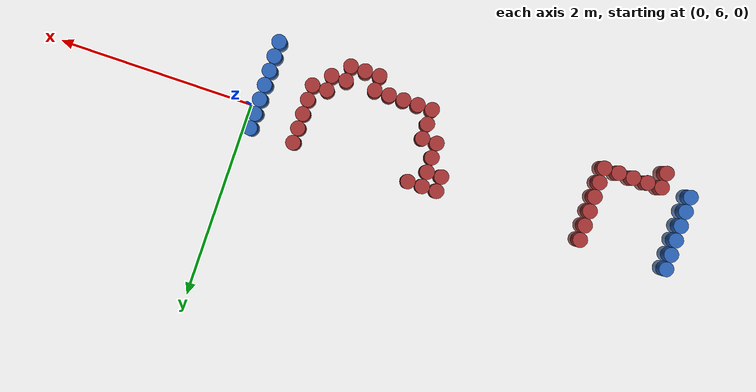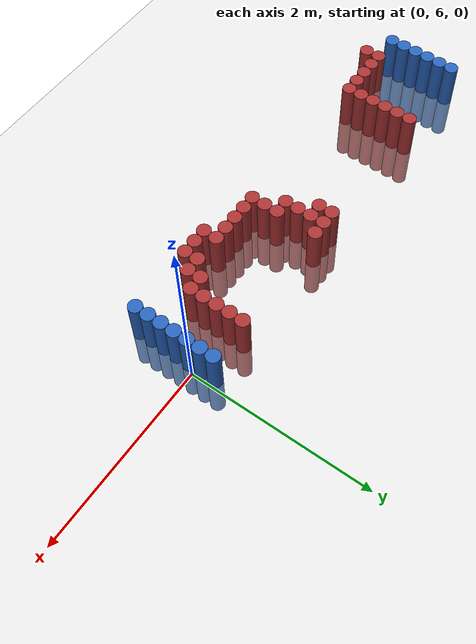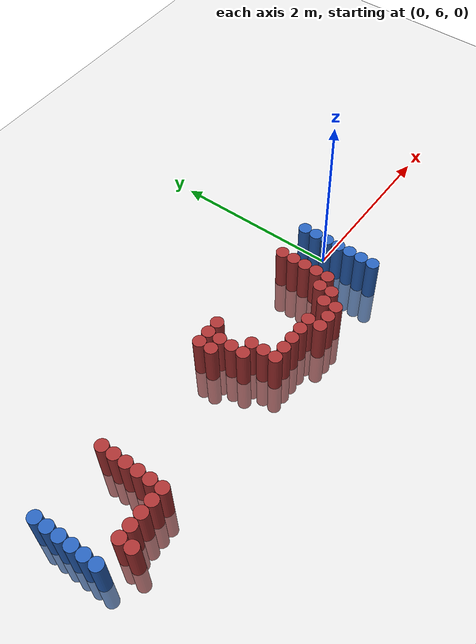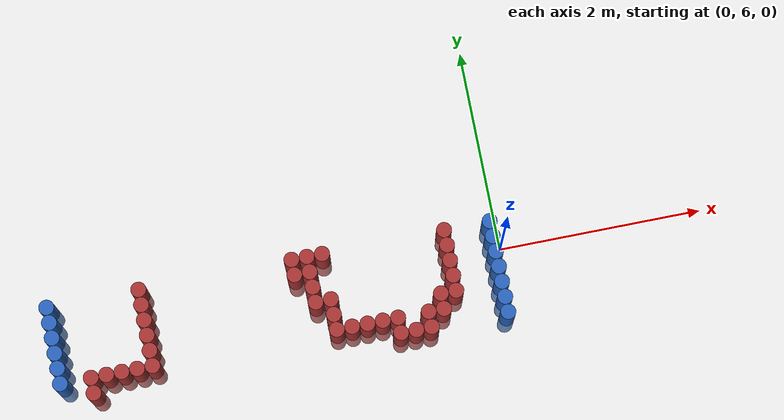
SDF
<sdf version="1.6">
 <world name="default">
  <model name="ground_plane">
   <static>1</static>
   <link name="link">
    <collision name="collision">
     <geometry><plane><normal>0 0 1</normal><size>100 100</size></plane></geometry>
     <surface><friction><ode><mu>100</mu><mu2>50</mu2></ode></friction></surface>
    </collision>
    <visual name="visual">
     <cast_shadows>0</cast_shadows>
     <geometry><plane><normal>0 0 1</normal><size>100 100</size></plane></geometry>
     <material>
      <script><uri>file://media/materials/scripts/gazebo.material</uri><name>Gazebo/Grey</name></script>
     </material>
    </visual>
   </link>
  </model>
  <model name="unit_cylinder_98">
   <static>1</static>
   <pose>-4.425000 5.475000 0.000000 0.000000 0.000000 0.000000</pose>
   <link name="link">
    <inertial>
     <mass>1</mass>
     <inertia><ixx>0.145833</ixx><ixy>0</ixy><ixz>0</ixz><iyy>0.145833</iyy><iyz>0</iyz><izz>0.125</izz></inertia>
    </inertial>
    <collision name="collision">
     <geometry><cylinder><radius>0.075000</radius><length>1</length></cylinder></geometry>
    </collision>
    <visual name="visual">
     <geometry><cylinder><radius>0.075000</radius><length>1</length></cylinder></geometry>
     <material>
      <ambient>0.152000 0.379000 0.720000 1</ambient>
      <diffuse>0.152000 0.379000 0.720000 1</diffuse>
     </material>
     <material>
      <script><name>Gazebo/Grey</name><uri>file://media/materials/scripts/gazebo.material</uri></script>
     </material>
    </visual>
   </link>
  </model>
  <model name="unit_cylinder_99">
   <static>1</static>
   <pose>-4.425000 5.625000 0.000000 0.000000 0.000000 0.000000</pose>
   <link name="link">
    <inertial>
     <mass>1</mass>
     <inertia><ixx>0.145833</ixx><ixy>0</ixy><ixz>0</ixz><iyy>0.145833</iyy><iyz>0</iyz><izz>0.125</izz></inertia>
    </inertial>
    <collision name="collision">
     <geometry><cylinder><radius>0.075000</radius><length>1</length></cylinder></geometry>
    </collision>
    <visual name="visual">
     <geometry><cylinder><radius>0.075000</radius><length>1</length></cylinder></geometry>
     <material>
      <ambient>0.152000 0.379000 0.720000 1</ambient>
      <diffuse>0.152000 0.379000 0.720000 1</diffuse>
     </material>
     <material>
      <script><name>Gazebo/Grey</name><uri>file://media/materials/scripts/gazebo.material</uri></script>
     </material>
    </visual>
   </link>
  </model>
  <model name="unit_cylinder_100">
   <static>1</static>
   <pose>-4.425000 5.775000 0.000000 0.000000 0.000000 0.000000</pose>
   <link name="link">
    <inertial>
     <mass>1</mass>
     <inertia><ixx>0.145833</ixx><ixy>0</ixy><ixz>0</ixz><iyy>0.145833</iyy><iyz>0</iyz><izz>0.125</izz></inertia>
    </inertial>
    <collision name="collision">
     <geometry><cylinder><radius>0.075000</radius><length>1</length></cylinder></geometry>
    </collision>
    <visual name="visual">
     <geometry><cylinder><radius>0.075000</radius><length>1</length></cylinder></geometry>
     <material>
      <ambient>0.152000 0.379000 0.720000 1</ambient>
      <diffuse>0.152000 0.379000 0.720000 1</diffuse>
     </material>
     <material>
      <script><name>Gazebo/Grey</name><uri>file://media/materials/scripts/gazebo.material</uri></script>
     </material>
    </visual>
   </link>
  </model>
  <model name="unit_cylinder_101">
   <static>1</static>
   <pose>-4.425000 5.925000 0.000000 0.000000 0.000000 0.000000</pose>
   <link name="link">
    <inertial>
     <mass>1</mass>
     <inertia><ixx>0.145833</ixx><ixy>0</ixy><ixz>0</ixz><iyy>0.145833</iyy><iyz>0</iyz><izz>0.125</izz></inertia>
    </inertial>
    <collision name="collision">
     <geometry><cylinder><radius>0.075000</radius><length>1</length></cylinder></geometry>
    </collision>
    <visual name="visual">
     <geometry><cylinder><radius>0.075000</radius><length>1</length></cylinder></geometry>
     <material>
      <ambient>0.152000 0.379000 0.720000 1</ambient>
      <diffuse>0.152000 0.379000 0.720000 1</diffuse>
     </material>
     <material>
      <script><name>Gazebo/Grey</name><uri>file://media/materials/scripts/gazebo.material</uri></script>
     </material>
    </visual>
   </link>
  </model>
  <model name="unit_cylinder_102">
   <static>1</static>
   <pose>-4.425000 6.075000 0.000000 0.000000 0.000000 0.000000</pose>
   <link name="link">
    <inertial>
     <mass>1</mass>
     <inertia><ixx>0.145833</ixx><ixy>0</ixy><ixz>0</ixz><iyy>0.145833</iyy><iyz>0</iyz><izz>0.125</izz></inertia>
    </inertial>
    <collision name="collision">
     <geometry><cylinder><radius>0.075000</radius><length>1</length></cylinder></geometry>
    </collision>
    <visual name="visual">
     <geometry><cylinder><radius>0.075000</radius><length>1</length></cylinder></geometry>
     <material>
      <ambient>0.152000 0.379000 0.720000 1</ambient>
      <diffuse>0.152000 0.379000 0.720000 1</diffuse>
     </material>
     <material>
      <script><name>Gazebo/Grey</name><uri>file://media/materials/scripts/gazebo.material</uri></script>
     </material>
    </visual>
   </link>
  </model>
  <model name="unit_cylinder_103">
   <static>1</static>
   <pose>-4.425000 6.225000 0.000000 0.000000 0.000000 0.000000</pose>
   <link name="link">
    <inertial>
     <mass>1</mass>
     <inertia><ixx>0.145833</ixx><ixy>0</ixy><ixz>0</ixz><iyy>0.145833</iyy><iyz>0</iyz><izz>0.125</izz></inertia>
    </inertial>
    <collision name="collision">
     <geometry><cylinder><radius>0.075000</radius><length>1</length></cylinder></geometry>
    </collision>
    <visual name="visual">
     <geometry><cylinder><radius>0.075000</radius><length>1</length></cylinder></geometry>
     <material>
      <ambient>0.152000 0.379000 0.720000 1</ambient>
      <diffuse>0.152000 0.379000 0.720000 1</diffuse>
     </material>
     <material>
      <script><name>Gazebo/Grey</name><uri>file://media/materials/scripts/gazebo.material</uri></script>
     </material>
    </visual>
   </link>
  </model>
  <model name="unit_cylinder_131">
   <static>1</static>
   <pose>-4.125000 5.325000 0.000000 0.000000 0.000000 0.000000</pose>
   <link name="link">
    <inertial>
     <mass>1</mass>
     <inertia><ixx>0.145833</ixx><ixy>0</ixy><ixz>0</ixz><iyy>0.145833</iyy><iyz>0</iyz><izz>0.125</izz></inertia>
    </inertial>
    <collision name="collision">
     <geometry><cylinder><radius>0.075000</radius><length>1</length></cylinder></geometry>
    </collision>
    <visual name="visual">
     <geometry><cylinder><radius>0.075000</radius><length>1</length></cylinder></geometry>
     <material>
      <ambient>0.648000 0.192000 0.192000 1</ambient>
      <diffuse>0.648000 0.192000 0.192000 1</diffuse>
     </material>
     <material>
      <script><name>Gazebo/Grey</name><uri>file://media/materials/scripts/gazebo.material</uri></script>
     </material>
    </visual>
   </link>
  </model>
  <model name="unit_cylinder_132">
   <static>1</static>
   <pose>-4.125000 5.475000 0.000000 0.000000 0.000000 0.000000</pose>
   <link name="link">
    <inertial>
     <mass>1</mass>
     <inertia><ixx>0.145833</ixx><ixy>0</ixy><ixz>0</ixz><iyy>0.145833</iyy><iyz>0</iyz><izz>0.125</izz></inertia>
    </inertial>
    <collision name="collision">
     <geometry><cylinder><radius>0.075000</radius><length>1</length></cylinder></geometry>
    </collision>
    <visual name="visual">
     <geometry><cylinder><radius>0.075000</radius><length>1</length></cylinder></geometry>
     <material>
      <ambient>0.648000 0.192000 0.192000 1</ambient>
      <diffuse>0.648000 0.192000 0.192000 1</diffuse>
     </material>
     <material>
      <script><name>Gazebo/Grey</name><uri>file://media/materials/scripts/gazebo.material</uri></script>
     </material>
    </visual>
   </link>
  </model>
  <model name="unit_cylinder_138">
   <static>1</static>
   <pose>-3.975000 5.475000 0.000000 0.000000 0.000000 0.000000</pose>
   <link name="link">
    <inertial>
     <mass>1</mass>
     <inertia><ixx>0.145833</ixx><ixy>0</ixy><ixz>0</ixz><iyy>0.145833</iyy><iyz>0</iyz><izz>0.125</izz></inertia>
    </inertial>
    <collision name="collision">
     <geometry><cylinder><radius>0.075000</radius><length>1</length></cylinder></geometry>
    </collision>
    <visual name="visual">
     <geometry><cylinder><radius>0.075000</radius><length>1</length></cylinder></geometry>
     <material>
      <ambient>0.648000 0.192000 0.192000 1</ambient>
      <diffuse>0.648000 0.192000 0.192000 1</diffuse>
     </material>
     <material>
      <script><name>Gazebo/Grey</name><uri>file://media/materials/scripts/gazebo.material</uri></script>
     </material>
    </visual>
   </link>
  </model>
  <model name="unit_cylinder_143">
   <static>1</static>
   <pose>-3.825000 5.475000 0.000000 0.000000 0.000000 0.000000</pose>
   <link name="link">
    <inertial>
     <mass>1</mass>
     <inertia><ixx>0.145833</ixx><ixy>0</ixy><ixz>0</ixz><iyy>0.145833</iyy><iyz>0</iyz><izz>0.125</izz></inertia>
    </inertial>
    <collision name="collision">
     <geometry><cylinder><radius>0.075000</radius><length>1</length></cylinder></geometry>
    </collision>
    <visual name="visual">
     <geometry><cylinder><radius>0.075000</radius><length>1</length></cylinder></geometry>
     <material>
      <ambient>0.648000 0.192000 0.192000 1</ambient>
      <diffuse>0.648000 0.192000 0.192000 1</diffuse>
     </material>
     <material>
      <script><name>Gazebo/Grey</name><uri>file://media/materials/scripts/gazebo.material</uri></script>
     </material>
    </visual>
   </link>
  </model>
  <model name="unit_cylinder_149">
   <static>1</static>
   <pose>-3.675000 5.475000 0.000000 0.000000 0.000000 0.000000</pose>
   <link name="link">
    <inertial>
     <mass>1</mass>
     <inertia><ixx>0.145833</ixx><ixy>0</ixy><ixz>0</ixz><iyy>0.145833</iyy><iyz>0</iyz><izz>0.125</izz></inertia>
    </inertial>
    <collision name="collision">
     <geometry><cylinder><radius>0.075000</radius><length>1</length></cylinder></geometry>
    </collision>
    <visual name="visual">
     <geometry><cylinder><radius>0.075000</radius><length>1</length></cylinder></geometry>
     <material>
      <ambient>0.648000 0.192000 0.192000 1</ambient>
      <diffuse>0.648000 0.192000 0.192000 1</diffuse>
     </material>
     <material>
      <script><name>Gazebo/Grey</name><uri>file://media/materials/scripts/gazebo.material</uri></script>
     </material>
    </visual>
   </link>
  </model>
  <model name="unit_cylinder_154">
   <static>1</static>
   <pose>-3.525000 5.475000 0.000000 0.000000 0.000000 0.000000</pose>
   <link name="link">
    <inertial>
     <mass>1</mass>
     <inertia><ixx>0.145833</ixx><ixy>0</ixy><ixz>0</ixz><iyy>0.145833</iyy><iyz>0</iyz><izz>0.125</izz></inertia>
    </inertial>
    <collision name="collision">
     <geometry><cylinder><radius>0.075000</radius><length>1</length></cylinder></geometry>
    </collision>
    <visual name="visual">
     <geometry><cylinder><radius>0.075000</radius><length>1</length></cylinder></geometry>
     <material>
      <ambient>0.648000 0.192000 0.192000 1</ambient>
      <diffuse>0.648000 0.192000 0.192000 1</diffuse>
     </material>
     <material>
      <script><name>Gazebo/Grey</name><uri>file://media/materials/scripts/gazebo.material</uri></script>
     </material>
    </visual>
   </link>
  </model>
  <model name="unit_cylinder_155">
   <static>1</static>
   <pose>-3.525000 5.625000 0.000000 0.000000 0.000000 0.000000</pose>
   <link name="link">
    <inertial>
     <mass>1</mass>
     <inertia><ixx>0.145833</ixx><ixy>0</ixy><ixz>0</ixz><iyy>0.145833</iyy><iyz>0</iyz><izz>0.125</izz></inertia>
    </inertial>
    <collision name="collision">
     <geometry><cylinder><radius>0.075000</radius><length>1</length></cylinder></geometry>
    </collision>
    <visual name="visual">
     <geometry><cylinder><radius>0.075000</radius><length>1</length></cylinder></geometry>
     <material>
      <ambient>0.648000 0.192000 0.192000 1</ambient>
      <diffuse>0.648000 0.192000 0.192000 1</diffuse>
     </material>
     <material>
      <script><name>Gazebo/Grey</name><uri>file://media/materials/scripts/gazebo.material</uri></script>
     </material>
    </visual>
   </link>
  </model>
  <model name="unit_cylinder_156">
   <static>1</static>
   <pose>-3.525000 5.775000 0.000000 0.000000 0.000000 0.000000</pose>
   <link name="link">
    <inertial>
     <mass>1</mass>
     <inertia><ixx>0.145833</ixx><ixy>0</ixy><ixz>0</ixz><iyy>0.145833</iyy><iyz>0</iyz><izz>0.125</izz></inertia>
    </inertial>
    <collision name="collision">
     <geometry><cylinder><radius>0.075000</radius><length>1</length></cylinder></geometry>
    </collision>
    <visual name="visual">
     <geometry><cylinder><radius>0.075000</radius><length>1</length></cylinder></geometry>
     <material>
      <ambient>0.648000 0.192000 0.192000 1</ambient>
      <diffuse>0.648000 0.192000 0.192000 1</diffuse>
     </material>
     <material>
      <script><name>Gazebo/Grey</name><uri>file://media/materials/scripts/gazebo.material</uri></script>
     </material>
    </visual>
   </link>
  </model>
  <model name="unit_cylinder_157">
   <static>1</static>
   <pose>-3.525000 5.925000 0.000000 0.000000 0.000000 0.000000</pose>
   <link name="link">
    <inertial>
     <mass>1</mass>
     <inertia><ixx>0.145833</ixx><ixy>0</ixy><ixz>0</ixz><iyy>0.145833</iyy><iyz>0</iyz><izz>0.125</izz></inertia>
    </inertial>
    <collision name="collision">
     <geometry><cylinder><radius>0.075000</radius><length>1</length></cylinder></geometry>
    </collision>
    <visual name="visual">
     <geometry><cylinder><radius>0.075000</radius><length>1</length></cylinder></geometry>
     <material>
      <ambient>0.648000 0.192000 0.192000 1</ambient>
      <diffuse>0.648000 0.192000 0.192000 1</diffuse>
     </material>
     <material>
      <script><name>Gazebo/Grey</name><uri>file://media/materials/scripts/gazebo.material</uri></script>
     </material>
    </visual>
   </link>
  </model>
  <model name="unit_cylinder_158">
   <static>1</static>
   <pose>-3.525000 6.075000 0.000000 0.000000 0.000000 0.000000</pose>
   <link name="link">
    <inertial>
     <mass>1</mass>
     <inertia><ixx>0.145833</ixx><ixy>0</ixy><ixz>0</ixz><iyy>0.145833</iyy><iyz>0</iyz><izz>0.125</izz></inertia>
    </inertial>
    <collision name="collision">
     <geometry><cylinder><radius>0.075000</radius><length>1</length></cylinder></geometry>
    </collision>
    <visual name="visual">
     <geometry><cylinder><radius>0.075000</radius><length>1</length></cylinder></geometry>
     <material>
      <ambient>0.648000 0.192000 0.192000 1</ambient>
      <diffuse>0.648000 0.192000 0.192000 1</diffuse>
     </material>
     <material>
      <script><name>Gazebo/Grey</name><uri>file://media/materials/scripts/gazebo.material</uri></script>
     </material>
    </visual>
   </link>
  </model>
  <model name="unit_cylinder_159">
   <static>1</static>
   <pose>-3.525000 6.225000 0.000000 0.000000 0.000000 0.000000</pose>
   <link name="link">
    <inertial>
     <mass>1</mass>
     <inertia><ixx>0.145833</ixx><ixy>0</ixy><ixz>0</ixz><iyy>0.145833</iyy><iyz>0</iyz><izz>0.125</izz></inertia>
    </inertial>
    <collision name="collision">
     <geometry><cylinder><radius>0.075000</radius><length>1</length></cylinder></geometry>
    </collision>
    <visual name="visual">
     <geometry><cylinder><radius>0.075000</radius><length>1</length></cylinder></geometry>
     <material>
      <ambient>0.648000 0.192000 0.192000 1</ambient>
      <diffuse>0.648000 0.192000 0.192000 1</diffuse>
     </material>
     <material>
      <script><name>Gazebo/Grey</name><uri>file://media/materials/scripts/gazebo.material</uri></script>
     </material>
    </visual>
   </link>
  </model>
  <model name="unit_cylinder_178">
   <static>1</static>
   <pose>-2.025000 6.075000 0.000000 0.000000 0.000000 0.000000</pose>
   <link name="link">
    <inertial>
     <mass>1</mass>
     <inertia><ixx>0.145833</ixx><ixy>0</ixy><ixz>0</ixz><iyy>0.145833</iyy><iyz>0</iyz><izz>0.125</izz></inertia>
    </inertial>
    <collision name="collision">
     <geometry><cylinder><radius>0.075000</radius><length>1</length></cylinder></geometry>
    </collision>
    <visual name="visual">
     <geometry><cylinder><radius>0.075000</radius><length>1</length></cylinder></geometry>
     <material>
      <ambient>0.648000 0.192000 0.192000 1</ambient>
      <diffuse>0.648000 0.192000 0.192000 1</diffuse>
     </material>
     <material>
      <script><name>Gazebo/Grey</name><uri>file://media/materials/scripts/gazebo.material</uri></script>
     </material>
    </visual>
   </link>
  </model>
  <model name="unit_cylinder_179">
   <static>1</static>
   <pose>-2.025000 6.225000 0.000000 0.000000 0.000000 0.000000</pose>
   <link name="link">
    <inertial>
     <mass>1</mass>
     <inertia><ixx>0.145833</ixx><ixy>0</ixy><ixz>0</ixz><iyy>0.145833</iyy><iyz>0</iyz><izz>0.125</izz></inertia>
    </inertial>
    <collision name="collision">
     <geometry><cylinder><radius>0.075000</radius><length>1</length></cylinder></geometry>
    </collision>
    <visual name="visual">
     <geometry><cylinder><radius>0.075000</radius><length>1</length></cylinder></geometry>
     <material>
      <ambient>0.648000 0.192000 0.192000 1</ambient>
      <diffuse>0.648000 0.192000 0.192000 1</diffuse>
     </material>
     <material>
      <script><name>Gazebo/Grey</name><uri>file://media/materials/scripts/gazebo.material</uri></script>
     </material>
    </visual>
   </link>
  </model>
  <model name="unit_cylinder_184">
   <static>1</static>
   <pose>-1.875000 5.775000 0.000000 0.000000 0.000000 0.000000</pose>
   <link name="link">
    <inertial>
     <mass>1</mass>
     <inertia><ixx>0.145833</ixx><ixy>0</ixy><ixz>0</ixz><iyy>0.145833</iyy><iyz>0</iyz><izz>0.125</izz></inertia>
    </inertial>
    <collision name="collision">
     <geometry><cylinder><radius>0.075000</radius><length>1</length></cylinder></geometry>
    </collision>
    <visual name="visual">
     <geometry><cylinder><radius>0.075000</radius><length>1</length></cylinder></geometry>
     <material>
      <ambient>0.648000 0.192000 0.192000 1</ambient>
      <diffuse>0.648000 0.192000 0.192000 1</diffuse>
     </material>
     <material>
      <script><name>Gazebo/Grey</name><uri>file://media/materials/scripts/gazebo.material</uri></script>
     </material>
    </visual>
   </link>
  </model>
  <model name="unit_cylinder_185">
   <static>1</static>
   <pose>-1.875000 5.925000 0.000000 0.000000 0.000000 0.000000</pose>
   <link name="link">
    <inertial>
     <mass>1</mass>
     <inertia><ixx>0.145833</ixx><ixy>0</ixy><ixz>0</ixz><iyy>0.145833</iyy><iyz>0</iyz><izz>0.125</izz></inertia>
    </inertial>
    <collision name="collision">
     <geometry><cylinder><radius>0.075000</radius><length>1</length></cylinder></geometry>
    </collision>
    <visual name="visual">
     <geometry><cylinder><radius>0.075000</radius><length>1</length></cylinder></geometry>
     <material>
      <ambient>0.648000 0.192000 0.192000 1</ambient>
      <diffuse>0.648000 0.192000 0.192000 1</diffuse>
     </material>
     <material>
      <script><name>Gazebo/Grey</name><uri>file://media/materials/scripts/gazebo.material</uri></script>
     </material>
    </visual>
   </link>
  </model>
  <model name="unit_cylinder_186">
   <static>1</static>
   <pose>-1.875000 6.075000 0.000000 0.000000 0.000000 0.000000</pose>
   <link name="link">
    <inertial>
     <mass>1</mass>
     <inertia><ixx>0.145833</ixx><ixy>0</ixy><ixz>0</ixz><iyy>0.145833</iyy><iyz>0</iyz><izz>0.125</izz></inertia>
    </inertial>
    <collision name="collision">
     <geometry><cylinder><radius>0.075000</radius><length>1</length></cylinder></geometry>
    </collision>
    <visual name="visual">
     <geometry><cylinder><radius>0.075000</radius><length>1</length></cylinder></geometry>
     <material>
      <ambient>0.648000 0.192000 0.192000 1</ambient>
      <diffuse>0.648000 0.192000 0.192000 1</diffuse>
     </material>
     <material>
      <script><name>Gazebo/Grey</name><uri>file://media/materials/scripts/gazebo.material</uri></script>
     </material>
    </visual>
   </link>
  </model>
  <model name="unit_cylinder_187">
   <static>1</static>
   <pose>-1.875000 6.225000 0.000000 0.000000 0.000000 0.000000</pose>
   <link name="link">
    <inertial>
     <mass>1</mass>
     <inertia><ixx>0.145833</ixx><ixy>0</ixy><ixz>0</ixz><iyy>0.145833</iyy><iyz>0</iyz><izz>0.125</izz></inertia>
    </inertial>
    <collision name="collision">
     <geometry><cylinder><radius>0.075000</radius><length>1</length></cylinder></geometry>
    </collision>
    <visual name="visual">
     <geometry><cylinder><radius>0.075000</radius><length>1</length></cylinder></geometry>
     <material>
      <ambient>0.648000 0.192000 0.192000 1</ambient>
      <diffuse>0.648000 0.192000 0.192000 1</diffuse>
     </material>
     <material>
      <script><name>Gazebo/Grey</name><uri>file://media/materials/scripts/gazebo.material</uri></script>
     </material>
    </visual>
   </link>
  </model>
  <model name="unit_cylinder_195">
   <static>1</static>
   <pose>-1.725000 5.475000 0.000000 0.000000 0.000000 0.000000</pose>
   <link name="link">
    <inertial>
     <mass>1</mass>
     <inertia><ixx>0.145833</ixx><ixy>0</ixy><ixz>0</ixz><iyy>0.145833</iyy><iyz>0</iyz><izz>0.125</izz></inertia>
    </inertial>
    <collision name="collision">
     <geometry><cylinder><radius>0.075000</radius><length>1</length></cylinder></geometry>
    </collision>
    <visual name="visual">
     <geometry><cylinder><radius>0.075000</radius><length>1</length></cylinder></geometry>
     <material>
      <ambient>0.648000 0.192000 0.192000 1</ambient>
      <diffuse>0.648000 0.192000 0.192000 1</diffuse>
     </material>
     <material>
      <script><name>Gazebo/Grey</name><uri>file://media/materials/scripts/gazebo.material</uri></script>
     </material>
    </visual>
   </link>
  </model>
  <model name="unit_cylinder_196">
   <static>1</static>
   <pose>-1.725000 5.625000 0.000000 0.000000 0.000000 0.000000</pose>
   <link name="link">
    <inertial>
     <mass>1</mass>
     <inertia><ixx>0.145833</ixx><ixy>0</ixy><ixz>0</ixz><iyy>0.145833</iyy><iyz>0</iyz><izz>0.125</izz></inertia>
    </inertial>
    <collision name="collision">
     <geometry><cylinder><radius>0.075000</radius><length>1</length></cylinder></geometry>
    </collision>
    <visual name="visual">
     <geometry><cylinder><radius>0.075000</radius><length>1</length></cylinder></geometry>
     <material>
      <ambient>0.648000 0.192000 0.192000 1</ambient>
      <diffuse>0.648000 0.192000 0.192000 1</diffuse>
     </material>
     <material>
      <script><name>Gazebo/Grey</name><uri>file://media/materials/scripts/gazebo.material</uri></script>
     </material>
    </visual>
   </link>
  </model>
  <model name="unit_cylinder_197">
   <static>1</static>
   <pose>-1.725000 5.775000 0.000000 0.000000 0.000000 0.000000</pose>
   <link name="link">
    <inertial>
     <mass>1</mass>
     <inertia><ixx>0.145833</ixx><ixy>0</ixy><ixz>0</ixz><iyy>0.145833</iyy><iyz>0</iyz><izz>0.125</izz></inertia>
    </inertial>
    <collision name="collision">
     <geometry><cylinder><radius>0.075000</radius><length>1</length></cylinder></geometry>
    </collision>
    <visual name="visual">
     <geometry><cylinder><radius>0.075000</radius><length>1</length></cylinder></geometry>
     <material>
      <ambient>0.648000 0.192000 0.192000 1</ambient>
      <diffuse>0.648000 0.192000 0.192000 1</diffuse>
     </material>
     <material>
      <script><name>Gazebo/Grey</name><uri>file://media/materials/scripts/gazebo.material</uri></script>
     </material>
    </visual>
   </link>
  </model>
  <model name="unit_cylinder_198">
   <static>1</static>
   <pose>-1.725000 6.225000 0.000000 0.000000 0.000000 0.000000</pose>
   <link name="link">
    <inertial>
     <mass>1</mass>
     <inertia><ixx>0.145833</ixx><ixy>0</ixy><ixz>0</ixz><iyy>0.145833</iyy><iyz>0</iyz><izz>0.125</izz></inertia>
    </inertial>
    <collision name="collision">
     <geometry><cylinder><radius>0.075000</radius><length>1</length></cylinder></geometry>
    </collision>
    <visual name="visual">
     <geometry><cylinder><radius>0.075000</radius><length>1</length></cylinder></geometry>
     <material>
      <ambient>0.648000 0.192000 0.192000 1</ambient>
      <diffuse>0.648000 0.192000 0.192000 1</diffuse>
     </material>
     <material>
      <script><name>Gazebo/Grey</name><uri>file://media/materials/scripts/gazebo.material</uri></script>
     </material>
    </visual>
   </link>
  </model>
  <model name="unit_cylinder_205">
   <static>1</static>
   <pose>-1.575000 5.475000 0.000000 0.000000 0.000000 0.000000</pose>
   <link name="link">
    <inertial>
     <mass>1</mass>
     <inertia><ixx>0.145833</ixx><ixy>0</ixy><ixz>0</ixz><iyy>0.145833</iyy><iyz>0</iyz><izz>0.125</izz></inertia>
    </inertial>
    <collision name="collision">
     <geometry><cylinder><radius>0.075000</radius><length>1</length></cylinder></geometry>
    </collision>
    <visual name="visual">
     <geometry><cylinder><radius>0.075000</radius><length>1</length></cylinder></geometry>
     <material>
      <ambient>0.648000 0.192000 0.192000 1</ambient>
      <diffuse>0.648000 0.192000 0.192000 1</diffuse>
     </material>
     <material>
      <script><name>Gazebo/Grey</name><uri>file://media/materials/scripts/gazebo.material</uri></script>
     </material>
    </visual>
   </link>
  </model>
  <model name="unit_cylinder_214">
   <static>1</static>
   <pose>-1.425000 5.475000 0.000000 0.000000 0.000000 0.000000</pose>
   <link name="link">
    <inertial>
     <mass>1</mass>
     <inertia><ixx>0.145833</ixx><ixy>0</ixy><ixz>0</ixz><iyy>0.145833</iyy><iyz>0</iyz><izz>0.125</izz></inertia>
    </inertial>
    <collision name="collision">
     <geometry><cylinder><radius>0.075000</radius><length>1</length></cylinder></geometry>
    </collision>
    <visual name="visual">
     <geometry><cylinder><radius>0.075000</radius><length>1</length></cylinder></geometry>
     <material>
      <ambient>0.648000 0.192000 0.192000 1</ambient>
      <diffuse>0.648000 0.192000 0.192000 1</diffuse>
     </material>
     <material>
      <script><name>Gazebo/Grey</name><uri>file://media/materials/scripts/gazebo.material</uri></script>
     </material>
    </visual>
   </link>
  </model>
  <model name="unit_cylinder_222">
   <static>1</static>
   <pose>-1.275000 5.475000 0.000000 0.000000 0.000000 0.000000</pose>
   <link name="link">
    <inertial>
     <mass>1</mass>
     <inertia><ixx>0.145833</ixx><ixy>0</ixy><ixz>0</ixz><iyy>0.145833</iyy><iyz>0</iyz><izz>0.125</izz></inertia>
    </inertial>
    <collision name="collision">
     <geometry><cylinder><radius>0.075000</radius><length>1</length></cylinder></geometry>
    </collision>
    <visual name="visual">
     <geometry><cylinder><radius>0.075000</radius><length>1</length></cylinder></geometry>
     <material>
      <ambient>0.648000 0.192000 0.192000 1</ambient>
      <diffuse>0.648000 0.192000 0.192000 1</diffuse>
     </material>
     <material>
      <script><name>Gazebo/Grey</name><uri>file://media/materials/scripts/gazebo.material</uri></script>
     </material>
    </visual>
   </link>
  </model>
  <model name="unit_cylinder_229">
   <static>1</static>
   <pose>-1.125000 5.325000 0.000000 0.000000 0.000000 0.000000</pose>
   <link name="link">
    <inertial>
     <mass>1</mass>
     <inertia><ixx>0.145833</ixx><ixy>0</ixy><ixz>0</ixz><iyy>0.145833</iyy><iyz>0</iyz><izz>0.125</izz></inertia>
    </inertial>
    <collision name="collision">
     <geometry><cylinder><radius>0.075000</radius><length>1</length></cylinder></geometry>
    </collision>
    <visual name="visual">
     <geometry><cylinder><radius>0.075000</radius><length>1</length></cylinder></geometry>
     <material>
      <ambient>0.648000 0.192000 0.192000 1</ambient>
      <diffuse>0.648000 0.192000 0.192000 1</diffuse>
     </material>
     <material>
      <script><name>Gazebo/Grey</name><uri>file://media/materials/scripts/gazebo.material</uri></script>
     </material>
    </visual>
   </link>
  </model>
  <model name="unit_cylinder_230">
   <static>1</static>
   <pose>-1.125000 5.475000 0.000000 0.000000 0.000000 0.000000</pose>
   <link name="link">
    <inertial>
     <mass>1</mass>
     <inertia><ixx>0.145833</ixx><ixy>0</ixy><ixz>0</ixz><iyy>0.145833</iyy><iyz>0</iyz><izz>0.125</izz></inertia>
    </inertial>
    <collision name="collision">
     <geometry><cylinder><radius>0.075000</radius><length>1</length></cylinder></geometry>
    </collision>
    <visual name="visual">
     <geometry><cylinder><radius>0.075000</radius><length>1</length></cylinder></geometry>
     <material>
      <ambient>0.648000 0.192000 0.192000 1</ambient>
      <diffuse>0.648000 0.192000 0.192000 1</diffuse>
     </material>
     <material>
      <script><name>Gazebo/Grey</name><uri>file://media/materials/scripts/gazebo.material</uri></script>
     </material>
    </visual>
   </link>
  </model>
  <model name="unit_cylinder_232">
   <static>1</static>
   <pose>-0.975000 5.325000 0.000000 0.000000 0.000000 0.000000</pose>
   <link name="link">
    <inertial>
     <mass>1</mass>
     <inertia><ixx>0.145833</ixx><ixy>0</ixy><ixz>0</ixz><iyy>0.145833</iyy><iyz>0</iyz><izz>0.125</izz></inertia>
    </inertial>
    <collision name="collision">
     <geometry><cylinder><radius>0.075000</radius><length>1</length></cylinder></geometry>
    </collision>
    <visual name="visual">
     <geometry><cylinder><radius>0.075000</radius><length>1</length></cylinder></geometry>
     <material>
      <ambient>0.648000 0.192000 0.192000 1</ambient>
      <diffuse>0.648000 0.192000 0.192000 1</diffuse>
     </material>
     <material>
      <script><name>Gazebo/Grey</name><uri>file://media/materials/scripts/gazebo.material</uri></script>
     </material>
    </visual>
   </link>
  </model>
  <model name="unit_cylinder_234">
   <static>1</static>
   <pose>-0.825000 5.325000 0.000000 0.000000 0.000000 0.000000</pose>
   <link name="link">
    <inertial>
     <mass>1</mass>
     <inertia><ixx>0.145833</ixx><ixy>0</ixy><ixz>0</ixz><iyy>0.145833</iyy><iyz>0</iyz><izz>0.125</izz></inertia>
    </inertial>
    <collision name="collision">
     <geometry><cylinder><radius>0.075000</radius><length>1</length></cylinder></geometry>
    </collision>
    <visual name="visual">
     <geometry><cylinder><radius>0.075000</radius><length>1</length></cylinder></geometry>
     <material>
      <ambient>0.648000 0.192000 0.192000 1</ambient>
      <diffuse>0.648000 0.192000 0.192000 1</diffuse>
     </material>
     <material>
      <script><name>Gazebo/Grey</name><uri>file://media/materials/scripts/gazebo.material</uri></script>
     </material>
    </visual>
   </link>
  </model>
  <model name="unit_cylinder_235">
   <static>1</static>
   <pose>-0.825000 5.475000 0.000000 0.000000 0.000000 0.000000</pose>
   <link name="link">
    <inertial>
     <mass>1</mass>
     <inertia><ixx>0.145833</ixx><ixy>0</ixy><ixz>0</ixz><iyy>0.145833</iyy><iyz>0</iyz><izz>0.125</izz></inertia>
    </inertial>
    <collision name="collision">
     <geometry><cylinder><radius>0.075000</radius><length>1</length></cylinder></geometry>
    </collision>
    <visual name="visual">
     <geometry><cylinder><radius>0.075000</radius><length>1</length></cylinder></geometry>
     <material>
      <ambient>0.648000 0.192000 0.192000 1</ambient>
      <diffuse>0.648000 0.192000 0.192000 1</diffuse>
     </material>
     <material>
      <script><name>Gazebo/Grey</name><uri>file://media/materials/scripts/gazebo.material</uri></script>
     </material>
    </visual>
   </link>
  </model>
  <model name="unit_cylinder_237">
   <static>1</static>
   <pose>-0.675000 5.475000 0.000000 0.000000 0.000000 0.000000</pose>
   <link name="link">
    <inertial>
     <mass>1</mass>
     <inertia><ixx>0.145833</ixx><ixy>0</ixy><ixz>0</ixz><iyy>0.145833</iyy><iyz>0</iyz><izz>0.125</izz></inertia>
    </inertial>
    <collision name="collision">
     <geometry><cylinder><radius>0.075000</radius><length>1</length></cylinder></geometry>
    </collision>
    <visual name="visual">
     <geometry><cylinder><radius>0.075000</radius><length>1</length></cylinder></geometry>
     <material>
      <ambient>0.648000 0.192000 0.192000 1</ambient>
      <diffuse>0.648000 0.192000 0.192000 1</diffuse>
     </material>
     <material>
      <script><name>Gazebo/Grey</name><uri>file://media/materials/scripts/gazebo.material</uri></script>
     </material>
    </visual>
   </link>
  </model>
  <model name="unit_cylinder_238">
   <static>1</static>
   <pose>-0.675000 5.625000 0.000000 0.000000 0.000000 0.000000</pose>
   <link name="link">
    <inertial>
     <mass>1</mass>
     <inertia><ixx>0.145833</ixx><ixy>0</ixy><ixz>0</ixz><iyy>0.145833</iyy><iyz>0</iyz><izz>0.125</izz></inertia>
    </inertial>
    <collision name="collision">
     <geometry><cylinder><radius>0.075000</radius><length>1</length></cylinder></geometry>
    </collision>
    <visual name="visual">
     <geometry><cylinder><radius>0.075000</radius><length>1</length></cylinder></geometry>
     <material>
      <ambient>0.648000 0.192000 0.192000 1</ambient>
      <diffuse>0.648000 0.192000 0.192000 1</diffuse>
     </material>
     <material>
      <script><name>Gazebo/Grey</name><uri>file://media/materials/scripts/gazebo.material</uri></script>
     </material>
    </visual>
   </link>
  </model>
  <model name="unit_cylinder_240">
   <static>1</static>
   <pose>-0.525000 5.625000 0.000000 0.000000 0.000000 0.000000</pose>
   <link name="link">
    <inertial>
     <mass>1</mass>
     <inertia><ixx>0.145833</ixx><ixy>0</ixy><ixz>0</ixz><iyy>0.145833</iyy><iyz>0</iyz><izz>0.125</izz></inertia>
    </inertial>
    <collision name="collision">
     <geometry><cylinder><radius>0.075000</radius><length>1</length></cylinder></geometry>
    </collision>
    <visual name="visual">
     <geometry><cylinder><radius>0.075000</radius><length>1</length></cylinder></geometry>
     <material>
      <ambient>0.648000 0.192000 0.192000 1</ambient>
      <diffuse>0.648000 0.192000 0.192000 1</diffuse>
     </material>
     <material>
      <script><name>Gazebo/Grey</name><uri>file://media/materials/scripts/gazebo.material</uri></script>
     </material>
    </visual>
   </link>
  </model>
  <model name="unit_cylinder_241">
   <static>1</static>
   <pose>-0.525000 5.775000 0.000000 0.000000 0.000000 0.000000</pose>
   <link name="link">
    <inertial>
     <mass>1</mass>
     <inertia><ixx>0.145833</ixx><ixy>0</ixy><ixz>0</ixz><iyy>0.145833</iyy><iyz>0</iyz><izz>0.125</izz></inertia>
    </inertial>
    <collision name="collision">
     <geometry><cylinder><radius>0.075000</radius><length>1</length></cylinder></geometry>
    </collision>
    <visual name="visual">
     <geometry><cylinder><radius>0.075000</radius><length>1</length></cylinder></geometry>
     <material>
      <ambient>0.648000 0.192000 0.192000 1</ambient>
      <diffuse>0.648000 0.192000 0.192000 1</diffuse>
     </material>
     <material>
      <script><name>Gazebo/Grey</name><uri>file://media/materials/scripts/gazebo.material</uri></script>
     </material>
    </visual>
   </link>
  </model>
  <model name="unit_cylinder_242">
   <static>1</static>
   <pose>-0.525000 5.925000 0.000000 0.000000 0.000000 0.000000</pose>
   <link name="link">
    <inertial>
     <mass>1</mass>
     <inertia><ixx>0.145833</ixx><ixy>0</ixy><ixz>0</ixz><iyy>0.145833</iyy><iyz>0</iyz><izz>0.125</izz></inertia>
    </inertial>
    <collision name="collision">
     <geometry><cylinder><radius>0.075000</radius><length>1</length></cylinder></geometry>
    </collision>
    <visual name="visual">
     <geometry><cylinder><radius>0.075000</radius><length>1</length></cylinder></geometry>
     <material>
      <ambient>0.648000 0.192000 0.192000 1</ambient>
      <diffuse>0.648000 0.192000 0.192000 1</diffuse>
     </material>
     <material>
      <script><name>Gazebo/Grey</name><uri>file://media/materials/scripts/gazebo.material</uri></script>
     </material>
    </visual>
   </link>
  </model>
  <model name="unit_cylinder_243">
   <static>1</static>
   <pose>-0.525000 6.075000 0.000000 0.000000 0.000000 0.000000</pose>
   <link name="link">
    <inertial>
     <mass>1</mass>
     <inertia><ixx>0.145833</ixx><ixy>0</ixy><ixz>0</ixz><iyy>0.145833</iyy><iyz>0</iyz><izz>0.125</izz></inertia>
    </inertial>
    <collision name="collision">
     <geometry><cylinder><radius>0.075000</radius><length>1</length></cylinder></geometry>
    </collision>
    <visual name="visual">
     <geometry><cylinder><radius>0.075000</radius><length>1</length></cylinder></geometry>
     <material>
      <ambient>0.648000 0.192000 0.192000 1</ambient>
      <diffuse>0.648000 0.192000 0.192000 1</diffuse>
     </material>
     <material>
      <script><name>Gazebo/Grey</name><uri>file://media/materials/scripts/gazebo.material</uri></script>
     </material>
    </visual>
   </link>
  </model>
  <model name="unit_cylinder_244">
   <static>1</static>
   <pose>-0.525000 6.225000 0.000000 0.000000 0.000000 0.000000</pose>
   <link name="link">
    <inertial>
     <mass>1</mass>
     <inertia><ixx>0.145833</ixx><ixy>0</ixy><ixz>0</ixz><iyy>0.145833</iyy><iyz>0</iyz><izz>0.125</izz></inertia>
    </inertial>
    <collision name="collision">
     <geometry><cylinder><radius>0.075000</radius><length>1</length></cylinder></geometry>
    </collision>
    <visual name="visual">
     <geometry><cylinder><radius>0.075000</radius><length>1</length></cylinder></geometry>
     <material>
      <ambient>0.648000 0.192000 0.192000 1</ambient>
      <diffuse>0.648000 0.192000 0.192000 1</diffuse>
     </material>
     <material>
      <script><name>Gazebo/Grey</name><uri>file://media/materials/scripts/gazebo.material</uri></script>
     </material>
    </visual>
   </link>
  </model>
  <model name="unit_cylinder_268">
   <static>1</static>
   <pose>-0.075000 5.325000 0.000000 0.000000 0.000000 0.000000</pose>
   <link name="link">
    <inertial>
     <mass>1</mass>
     <inertia><ixx>0.145833</ixx><ixy>0</ixy><ixz>0</ixz><iyy>0.145833</iyy><iyz>0</iyz><izz>0.125</izz></inertia>
    </inertial>
    <collision name="collision">
     <geometry><cylinder><radius>0.075000</radius><length>1</length></cylinder></geometry>
    </collision>
    <visual name="visual">
     <geometry><cylinder><radius>0.075000</radius><length>1</length></cylinder></geometry>
     <material>
      <ambient>0.152000 0.379000 0.720000 1</ambient>
      <diffuse>0.152000 0.379000 0.720000 1</diffuse>
     </material>
     <material>
      <script><name>Gazebo/Grey</name><uri>file://media/materials/scripts/gazebo.material</uri></script>
     </material>
    </visual>
   </link>
  </model>
  <model name="unit_cylinder_269">
   <static>1</static>
   <pose>-0.075000 5.475000 0.000000 0.000000 0.000000 0.000000</pose>
   <link name="link">
    <inertial>
     <mass>1</mass>
     <inertia><ixx>0.145833</ixx><ixy>0</ixy><ixz>0</ixz><iyy>0.145833</iyy><iyz>0</iyz><izz>0.125</izz></inertia>
    </inertial>
    <collision name="collision">
     <geometry><cylinder><radius>0.075000</radius><length>1</length></cylinder></geometry>
    </collision>
    <visual name="visual">
     <geometry><cylinder><radius>0.075000</radius><length>1</length></cylinder></geometry>
     <material>
      <ambient>0.152000 0.379000 0.720000 1</ambient>
      <diffuse>0.152000 0.379000 0.720000 1</diffuse>
     </material>
     <material>
      <script><name>Gazebo/Grey</name><uri>file://media/materials/scripts/gazebo.material</uri></script>
     </material>
    </visual>
   </link>
  </model>
  <model name="unit_cylinder_270">
   <static>1</static>
   <pose>-0.075000 5.625000 0.000000 0.000000 0.000000 0.000000</pose>
   <link name="link">
    <inertial>
     <mass>1</mass>
     <inertia><ixx>0.145833</ixx><ixy>0</ixy><ixz>0</ixz><iyy>0.145833</iyy><iyz>0</iyz><izz>0.125</izz></inertia>
    </inertial>
    <collision name="collision">
     <geometry><cylinder><radius>0.075000</radius><length>1</length></cylinder></geometry>
    </collision>
    <visual name="visual">
     <geometry><cylinder><radius>0.075000</radius><length>1</length></cylinder></geometry>
     <material>
      <ambient>0.152000 0.379000 0.720000 1</ambient>
      <diffuse>0.152000 0.379000 0.720000 1</diffuse>
     </material>
     <material>
      <script><name>Gazebo/Grey</name><uri>file://media/materials/scripts/gazebo.material</uri></script>
     </material>
    </visual>
   </link>
  </model>
  <model name="unit_cylinder_271">
   <static>1</static>
   <pose>-0.075000 5.775000 0.000000 0.000000 0.000000 0.000000</pose>
   <link name="link">
    <inertial>
     <mass>1</mass>
     <inertia><ixx>0.145833</ixx><ixy>0</ixy><ixz>0</ixz><iyy>0.145833</iyy><iyz>0</iyz><izz>0.125</izz></inertia>
    </inertial>
    <collision name="collision">
     <geometry><cylinder><radius>0.075000</radius><length>1</length></cylinder></geometry>
    </collision>
    <visual name="visual">
     <geometry><cylinder><radius>0.075000</radius><length>1</length></cylinder></geometry>
     <material>
      <ambient>0.152000 0.379000 0.720000 1</ambient>
      <diffuse>0.152000 0.379000 0.720000 1</diffuse>
     </material>
     <material>
      <script><name>Gazebo/Grey</name><uri>file://media/materials/scripts/gazebo.material</uri></script>
     </material>
    </visual>
   </link>
  </model>
  <model name="unit_cylinder_272">
   <static>1</static>
   <pose>-0.075000 5.925000 0.000000 0.000000 0.000000 0.000000</pose>
   <link name="link">
    <inertial>
     <mass>1</mass>
     <inertia><ixx>0.145833</ixx><ixy>0</ixy><ixz>0</ixz><iyy>0.145833</iyy><iyz>0</iyz><izz>0.125</izz></inertia>
    </inertial>
    <collision name="collision">
     <geometry><cylinder><radius>0.075000</radius><length>1</length></cylinder></geometry>
    </collision>
    <visual name="visual">
     <geometry><cylinder><radius>0.075000</radius><length>1</length></cylinder></geometry>
     <material>
      <ambient>0.152000 0.379000 0.720000 1</ambient>
      <diffuse>0.152000 0.379000 0.720000 1</diffuse>
     </material>
     <material>
      <script><name>Gazebo/Grey</name><uri>file://media/materials/scripts/gazebo.material</uri></script>
     </material>
    </visual>
   </link>
  </model>
  <model name="unit_cylinder_273">
   <static>1</static>
   <pose>-0.075000 6.075000 0.000000 0.000000 0.000000 0.000000</pose>
   <link name="link">
    <inertial>
     <mass>1</mass>
     <inertia><ixx>0.145833</ixx><ixy>0</ixy><ixz>0</ixz><iyy>0.145833</iyy><iyz>0</iyz><izz>0.125</izz></inertia>
    </inertial>
    <collision name="collision">
     <geometry><cylinder><radius>0.075000</radius><length>1</length></cylinder></geometry>
    </collision>
    <visual name="visual">
     <geometry><cylinder><radius>0.075000</radius><length>1</length></cylinder></geometry>
     <material>
      <ambient>0.152000 0.379000 0.720000 1</ambient>
      <diffuse>0.152000 0.379000 0.720000 1</diffuse>
     </material>
     <material>
      <script><name>Gazebo/Grey</name><uri>file://media/materials/scripts/gazebo.material</uri></script>
     </material>
    </visual>
   </link>
  </model>
  <model name="unit_cylinder_274">
   <static>1</static>
   <pose>-0.075000 6.225000 0.000000 0.000000 0.000000 0.000000</pose>
   <link name="link">
    <inertial>
     <mass>1</mass>
     <inertia><ixx>0.145833</ixx><ixy>0</ixy><ixz>0</ixz><iyy>0.145833</iyy><iyz>0</iyz><izz>0.125</izz></inertia>
    </inertial>
    <collision name="collision">
     <geometry><cylinder><radius>0.075000</radius><length>1</length></cylinder></geometry>
    </collision>
    <visual name="visual">
     <geometry><cylinder><radius>0.075000</radius><length>1</length></cylinder></geometry>
     <material>
      <ambient>0.152000 0.379000 0.720000 1</ambient>
      <diffuse>0.152000 0.379000 0.720000 1</diffuse>
     </material>
     <material>
      <script><name>Gazebo/Grey</name><uri>file://media/materials/scripts/gazebo.material</uri></script>
     </material>
    </visual>
   </link>
  </model>
 </world>
</sdf>
